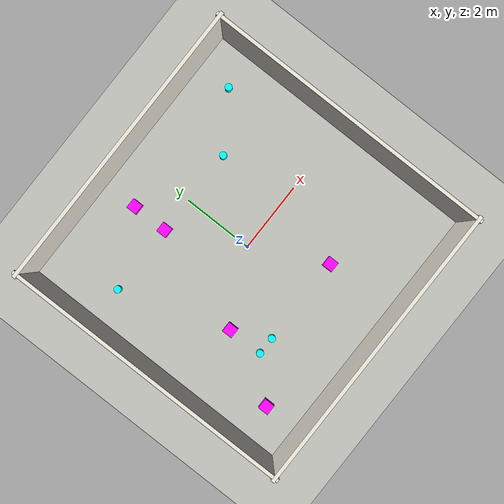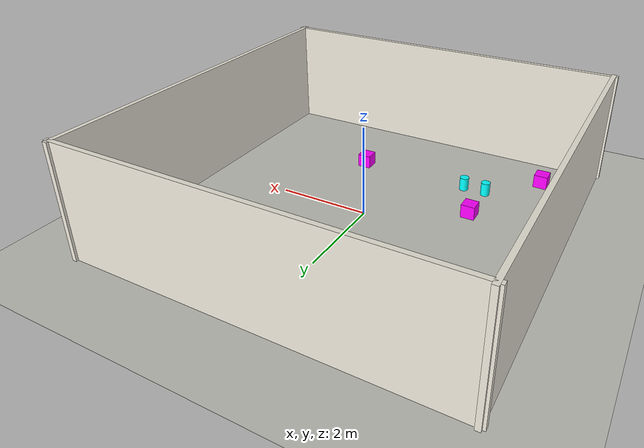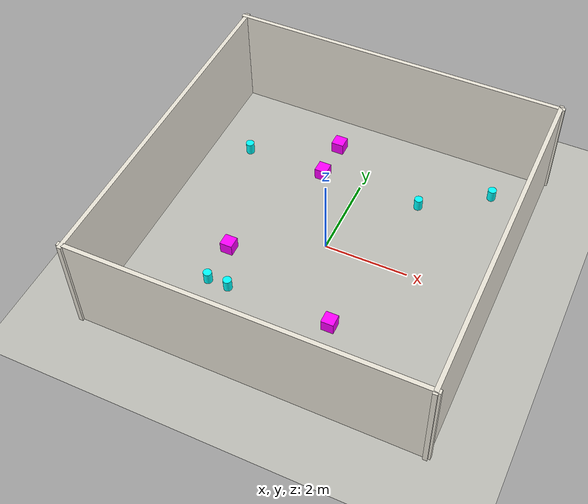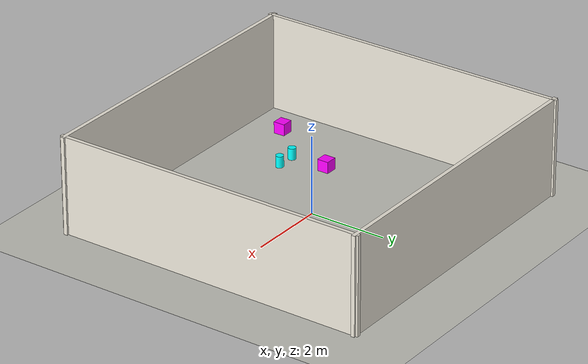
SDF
<?xml version="1.0"?>
<sdf version="1.8">
  <world name="room_world">
    <physics name="1ms" type="ignored">
      <max_step_size>0.001</max_step_size>
      <real_time_factor>1.0</real_time_factor>
    </physics>

    <plugin filename="gz-sim-physics-system" name="gz::sim::systems::Physics" />
    <plugin filename="gz-sim-user-commands-system" name="gz::sim::systems::UserCommands" />
    <plugin filename="gz-sim-scene-broadcaster-system" name="gz::sim::systems::SceneBroadcaster" />
    <plugin filename="gz-sim-sensors-system" name="gz::sim::systems::Sensors">
      <render_engine>ogre2</render_engine>
    </plugin>

    <light type="directional" name="sun">
      <cast_shadows>true</cast_shadows>
      <pose>0 0 10 0 0 0</pose>
      <diffuse>0.8 0.8 0.8 1</diffuse>
      <specular>0.2 0.2 0.2 1</specular>
      <direction>-0.5 0.1 -0.9</direction>
    </light>

    <model name="ground_plane">
      <static>true</static>
      <link name="link">
        <collision name="collision">
          <geometry>
            <plane>
              <normal>0 0 1</normal>
            </plane>
          </geometry>
          <surface>
            <friction>
              <ode>
                <mu>1.0</mu>
                <mu2>1.0</mu2>
              </ode>
            </friction>
          </surface>
        </collision>
        <visual name="visual">
          <geometry>
            <plane>
              <normal>0 0 1</normal>
              <size>8 8</size>
            </plane>
          </geometry>
          <material>
            <ambient>0.75 0.75 0.72 1</ambient>
            <diffuse>0.75 0.75 0.72 1</diffuse>
            <specular>0.2 0.2 0.2 1</specular>
          </material>
        </visual>
      </link>
    </model>

    <model name="room">
      <static>true</static>
      <link name="wall_back">
        <pose>0 4 1.25 0 0 0</pose>
        <visual name="visual">
          <geometry>
            <box>
              <size>8.2 0.1 2.5</size>
            </box>
          </geometry>
          <material>
            <ambient>0.92 0.90 0.85 1</ambient>
            <diffuse>0.92 0.90 0.85 1</diffuse>
            <specular>0.1 0.1 0.1 1</specular>
          </material>
        </visual>
        <collision name="collision">
          <geometry>
            <box>
              <size>8.2 0.1 2.5</size>
            </box>
          </geometry>
        </collision>
      </link>
      <link name="wall_front">
        <pose>0 -4 1.25 0 0 0</pose>
        <visual name="visual">
          <geometry>
            <box>
              <size>8.2 0.1 2.5</size>
            </box>
          </geometry>
          <material>
            <ambient>0.92 0.90 0.85 1</ambient>
            <diffuse>0.92 0.90 0.85 1</diffuse>
            <specular>0.1 0.1 0.1 1</specular>
          </material>
        </visual>
        <collision name="collision">
          <geometry>
            <box>
              <size>8.2 0.1 2.5</size>
            </box>
          </geometry>
        </collision>
      </link>
      <link name="wall_left">
        <pose>-4 0 1.25 0 0 0</pose>
        <visual name="visual">
          <geometry>
            <box>
              <size>0.1 8.2 2.5</size>
            </box>
          </geometry>
          <material>
            <ambient>0.92 0.90 0.85 1</ambient>
            <diffuse>0.92 0.90 0.85 1</diffuse>
            <specular>0.1 0.1 0.1 1</specular>
          </material>
        </visual>
        <collision name="collision">
          <geometry>
            <box>
              <size>0.1 8.2 2.5</size>
            </box>
          </geometry>
        </collision>
      </link>
      <link name="wall_right">
        <pose>4 0 1.25 0 0 0</pose>
        <visual name="visual">
          <geometry>
            <box>
              <size>0.1 8.2 2.5</size>
            </box>
          </geometry>
          <material>
            <ambient>0.92 0.90 0.85 1</ambient>
            <diffuse>0.92 0.90 0.85 1</diffuse>
            <specular>0.1 0.1 0.1 1</specular>
          </material>
        </visual>
        <collision name="collision">
          <geometry>
            <box>
              <size>0.1 8.2 2.5</size>
            </box>
          </geometry>
        </collision>
      </link>
      <link name='box1'>
        <pose>-1 2 0.15 0 0 0</pose>
        <visual name='visual'>
          <geometry>
            <box>
              <size>0.3 0.3 0.3</size>
            </box>
          </geometry>
          <material>
            <ambient>1.0 0.0 1.0 1</ambient>
            <diffuse>1.0 0.0 1.0 1</diffuse>
            <specular>1.0 0.0 1.0 1</specular>
          </material>
        </visual>
        <collision name='collision'>
          <geometry>
            <box>
              <size>1 1 1</size>
            </box>
          </geometry>
        </collision>
      </link>
      <link name='box2'>
        <pose>-1 3 0.15 0 0 0</pose>
        <visual name='visual'>
          <geometry>
            <box>
              <size>0.3 0.3 0.3</size>
            </box>
          </geometry>
          <material>
            <ambient>1.0 0.0 1.0 1</ambient>
            <diffuse>1.0 0.0 1.0 1</diffuse>
            <specular>1.0 0.0 1.0 1</specular>
          </material>
        </visual>
        <collision name='collision'>
          <geometry>
            <box>
              <size>1 1 1</size>
            </box>
          </geometry>
        </collision>
      </link>
      <link name='box3'>
        <pose>-2 -1 0.15 0 0 0</pose>
        <visual name='visual'>
          <geometry>
            <box>
              <size>0.3 0.3 0.3</size>
            </box>
          </geometry>
          <material>
            <ambient>1.0 0.0 1.0 1</ambient>
            <diffuse>1.0 0.0 1.0 1</diffuse>
            <specular>1.0 0.0 1.0 1</specular>
          </material>
        </visual>
        <collision name='collision'>
          <geometry>
            <box>
              <size>1 1 1</size>
            </box>
          </geometry>
        </collision>
      </link>
      <link name='box4'>
        <pose>1 -2 0.15 0 0 0</pose>
        <visual name='visual'>
          <geometry>
            <box>
              <size>0.3 0.3 0.3</size>
            </box>
          </geometry>
          <material>
            <ambient>1.0 0.0 1.0 1</ambient>
            <diffuse>1.0 0.0 1.0 1</diffuse>
            <specular>1.0 0.0 1.0 1</specular>
          </material>
        </visual>
        <collision name='collision'>
          <geometry>
            <box>
              <size>1 1 1</size>
            </box>
          </geometry>
        </collision>
      </link>
      <link name='box5'>
        <pose>-3 -3 0.15 0 0 0</pose>
        <visual name='visual'>
          <geometry>
            <box>
              <size>0.3 0.3 0.3</size>
            </box>
          </geometry>
          <material>
            <ambient>1.0 0.0 1.0 1</ambient>
            <diffuse>1.0 0.0 1.0 1</diffuse>
            <specular>1.0 0.0 1.0 1</specular>
          </material>
        </visual>
        <collision name='collision'>
          <geometry>
            <box>
              <size>1 1 1</size>
            </box>
          </geometry>
        </collision>
      </link>
      <link name='cylinder1'>
        <pose>1.5 2 0.15 0 0 0</pose>
        <visual name='visual'>
          <geometry>
            <cylinder>
              <radius>0.1</radius>
              <length>0.3</length>
            </cylinder>
          </geometry>
          <material>
            <ambient>0.0 1.0 1.0 1</ambient>
            <diffuse>0.0 1.0 1.0 1</diffuse>
            <specular>0.0 1.0 1.0 1</specular>
          </material>
        </visual>

        <collision name='collision'>
          <geometry>
            <cylinder>
              <radius>0.1</radius>
              <length>0.3</length>
            </cylinder>
          </geometry>
        </collision>
      </link>
      <link name='cylinder2'>
        <pose>-1.5 -2 0.15 0 0 0</pose>
        <visual name='visual'>
          <geometry>
            <cylinder>
              <radius>0.1</radius>
              <length>0.3</length>
            </cylinder>
          </geometry>
          <material>
            <ambient>0.0 1.0 1.0 1</ambient>
            <diffuse>0.0 1.0 1.0 1</diffuse>
            <specular>0.0 1.0 1.0 1</specular>
          </material>
        </visual>

        <collision name='collision'>
          <geometry>
            <cylinder>
              <radius>0.1</radius>
              <length>0.3</length>
            </cylinder>
          </geometry>
        </collision>
      </link>
      <link name='cylinder3'>
        <pose>-2 -2 0.15 0 0 0</pose>
        <visual name='visual'>
          <geometry>
            <cylinder>
              <radius>0.1</radius>
              <length>0.3</length>
            </cylinder>
          </geometry>
          <material>
            <ambient>0.0 1.0 1.0 1</ambient>
            <diffuse>0.0 1.0 1.0 1</diffuse>
            <specular>0.0 1.0 1.0 1</specular>
          </material>
        </visual>

        <collision name='collision'>
          <geometry>
            <cylinder>
              <radius>0.1</radius>
              <length>0.3</length>
            </cylinder>
          </geometry>
        </collision>
      </link>
      <link name='cylinder4'>
        <pose>-3 2 0.15 0 0 0</pose>
        <visual name='visual'>
          <geometry>
            <cylinder>
              <radius>0.1</radius>
              <length>0.3</length>
            </cylinder>
          </geometry>
          <material>
            <ambient>0.0 1.0 1.0 1</ambient>
            <diffuse>0.0 1.0 1.0 1</diffuse>
            <specular>0.0 1.0 1.0 1</specular>
          </material>
        </visual>

        <collision name='collision'>
          <geometry>
            <cylinder>
              <radius>0.1</radius>
              <length>0.3</length>
            </cylinder>
          </geometry>
        </collision>
      </link>
      <link name='cylinder5'>
        <pose>3 3 0.15 0 0 0</pose>
        <visual name='visual'>
          <geometry>
            <cylinder>
              <radius>0.1</radius>
              <length>0.3</length>
            </cylinder>
          </geometry>
          <material>
            <ambient>0.0 1.0 1.0 1</ambient>
            <diffuse>0.0 1.0 1.0 1</diffuse>
            <specular>0.0 1.0 1.0 1</specular>
          </material>
        </visual>

        <collision name='collision'>
          <geometry>
            <cylinder>
              <radius>0.1</radius>
              <length>0.3</length>
            </cylinder>
          </geometry>
        </collision>
      </link>
    </model>
  </world>
</sdf>
